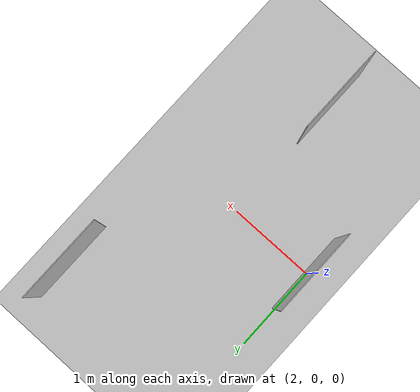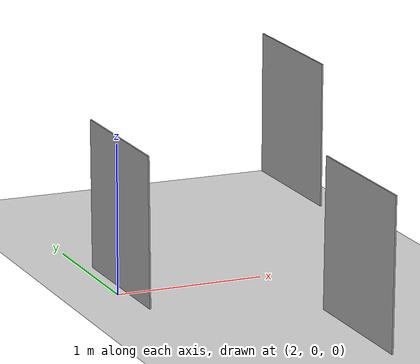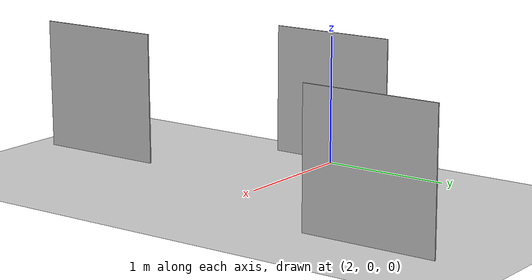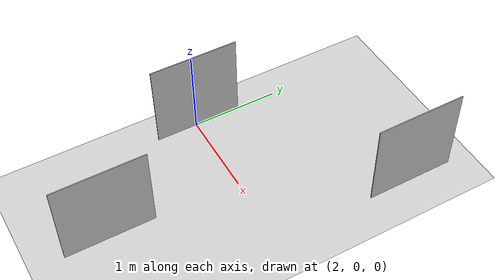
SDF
<sdf version="1.6">
 <world name="default">
  <light name="sun" type="directional">
   <pose>0 0 10 0 -0 0</pose>
   <diffuse>0.8 0.8 0.8 1</diffuse>
   <specular>0.2 0.2 0.2 1</specular>
   <attenuation>
    <range>1000</range>
    <constant>0.9</constant>
    <linear>0.01</linear>
    <quadratic>0.001</quadratic>
   </attenuation>
   <direction>-0.5 0.1 -0.9</direction>
  </light>
  <model name="ground_plane">
   <static>1</static>
   <link name="link">
    <collision name="collision">
     <geometry><plane><normal>0 0 1</normal><size>100 100</size></plane></geometry>
     <surface>
      <contact><collide_bitmask>65535</collide_bitmask></contact>
      <friction><ode><mu>100</mu><mu2>50</mu2></ode></friction>
     </surface>
    </collision>
    <visual name="visual">
     <cast_shadows>0</cast_shadows>
     <geometry><plane><normal>0 0 1</normal><size>100 100</size></plane></geometry>
     <material>
      <script><uri>file://media/materials/scripts/gazebo.material</uri><name>Gazebo/Grey</name></script>
     </material>
    </visual>
   </link>
  </model>
  <gravity>0 0 -9.8</gravity>
  <magnetic_field>6e-06 2.3e-05 -4.2e-05</magnetic_field>
  <atmosphere type="adiabatic"/>
  <physics name="default_physics" default="0" type="ode">
   <max_step_size>0.001</max_step_size>
   <real_time_factor>1</real_time_factor>
   <real_time_update_rate>1000</real_time_update_rate>
  </physics>
  <scene><ambient>0.4 0.4 0.4 1</ambient><background>0.7 0.7 0.7 1</background><shadows>1</shadows></scene>
  <audio><device>default</device></audio>
  <spherical_coordinates>
   <surface_model>EARTH_WGS84</surface_model>
   <latitude_deg>0</latitude_deg>
   <longitude_deg>0</longitude_deg>
   <elevation>0</elevation>
   <heading_deg>0</heading_deg>
  </spherical_coordinates>
  <model name="Apriltag36_11_00003">
   <link name="main">
    <visual name="main_Visual">
     <geometry><box><size>1 1 0.01</size></box></geometry>
     <material>
      <script>
       <uri>model://Apriltag36_11_00003/materials/scripts</uri>
       <uri>model://Apriltag36_11_00003/materials/textures</uri>
       <name>Apriltag36_11_00003</name>
      </script>
     </material>
    </visual>
   </link>
   <static>1</static>
   <pose>3.9222 1.56805 0.601138 0 -1.5675 0</pose>
  </model>
  <model name="Apriltag36_11_00008">
   <link name="main">
    <visual name="main_Visual">
     <geometry><box><size>1 1 0.01</size></box></geometry>
     <material>
      <script>
       <uri>model://Apriltag36_11_00008/materials/scripts</uri>
       <uri>model://Apriltag36_11_00008/materials/textures</uri>
       <name>Apriltag36_11_00008</name>
      </script>
     </material>
    </visual>
   </link>
   <static>1</static>
   <pose>2.02689 0.020316 0.53777 3.14159 -1.56445 3.14159</pose>
  </model>
  <model name="Apriltag36_11_00015">
   <link name="main">
    <visual name="main_Visual">
     <geometry><box><size>1 1 0.01</size></box></geometry>
     <material>
      <script>
       <uri>model://Apriltag36_11_00015/materials/scripts</uri>
       <uri>model://Apriltag36_11_00015/materials/textures</uri>
       <name>Apriltag36_11_00015</name>
      </script>
     </material>
    </visual>
   </link>
   <static>1</static>
   <pose>3.01589 -1.47148 0.559368 0 -1.55886 0</pose>
  </model>
 </world>
</sdf>
